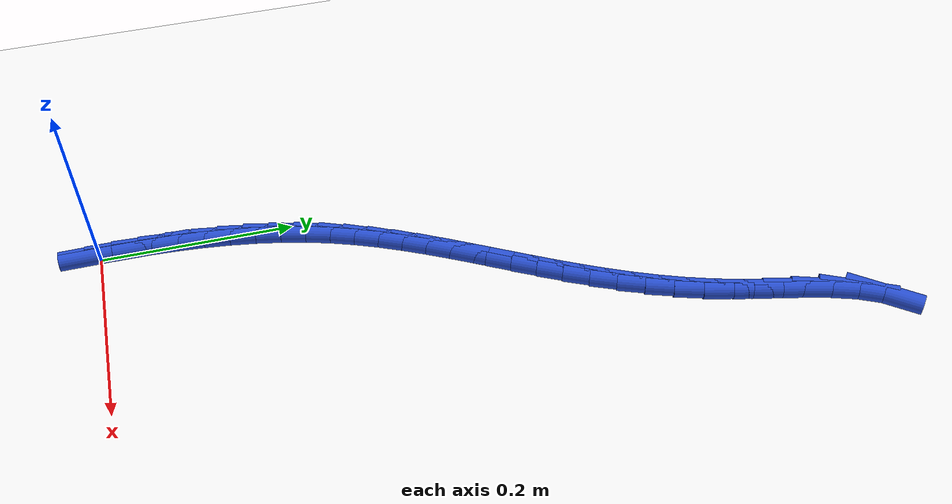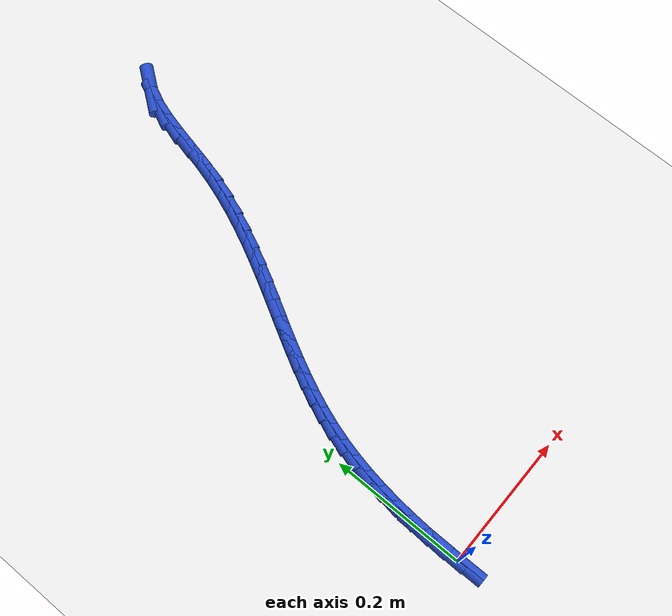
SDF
<sdf version="1.6">
 <world name="default">
  <model name="ground_plane">
   <static>1</static>
   <link name="link">
    <collision name="collision">
     <geometry><plane><normal>0 0 1</normal><size>100 100</size></plane></geometry>
     <surface><friction><ode><mu>100</mu><mu2>50</mu2></ode></friction></surface>
    </collision>
    <visual name="visual">
     <cast_shadows>0</cast_shadows>
     <geometry><plane><normal>0 0 1</normal><size>100 100</size></plane></geometry>
     <material>
      <script><uri>file://media/materials/scripts/gazebo.material</uri><name>Gazebo/WhiteGlow</name></script>
     </material>
    </visual>
   </link>
  </model>
  <model name="line">
   <link name="link_0">
    <pose>7.806255641895632e-18 2.7755575615628914e-17 0.01 0 1.57 -1.561988760627516</pose>
    <collision name="collision">
     <geometry><cylinder><radius>0.01</radius><length>0.08</length></cylinder></geometry>
    </collision>
    <visual name="visual">
     <material>
      <script><name>Gazebo/Blue</name><uri>file://media/materials/scripts/gazebo.material</uri></script>
     </material>
     <geometry><cylinder><radius>0.01</radius><length>0.08</length></cylinder></geometry>
    </visual>
   </link>
   <link name="link_1">
    <pose>-0.00023834691809172237 0.027060909951467163 0.01 0 1.57 1.5531682049827387</pose>
    <collision name="collision">
     <geometry><cylinder><radius>0.01</radius><length>0.08</length></cylinder></geometry>
    </collision>
    <visual name="visual">
     <material>
      <script><name>Gazebo/Blue</name><uri>file://media/materials/scripts/gazebo.material</uri></script>
     </material>
     <geometry><cylinder><radius>0.01</radius><length>0.08</length></cylinder></geometry>
    </visual>
   </link>
   <link name="link_2">
    <pose>0.00024055834869044307 0.05422521390538978 0.01 0 1.57 1.5242373293625207</pose>
    <collision name="collision">
     <geometry><cylinder><radius>0.01</radius><length>0.08</length></cylinder></geometry>
    </collision>
    <visual name="visual">
     <material>
      <script><name>Gazebo/Blue</name><uri>file://media/materials/scripts/gazebo.material</uri></script>
     </material>
     <geometry><cylinder><radius>0.01</radius><length>0.08</length></cylinder></geometry>
    </visual>
   </link>
   <link name="link_3">
    <pose>0.001506280793951367 0.0813909132757816 0.01 0 1.57 1.4925489831636094</pose>
    <collision name="collision">
     <geometry><cylinder><radius>0.01</radius><length>0.08</length></cylinder></geometry>
    </collision>
    <visual name="visual">
     <material>
      <script><name>Gazebo/Blue</name><uri>file://media/materials/scripts/gazebo.material</uri></script>
     </material>
     <geometry><cylinder><radius>0.01</radius><length>0.08</length></cylinder></geometry>
    </visual>
   </link>
   <link name="link_4">
    <pose>0.0036283854112959084 0.10845600947665646 0.01 0 1.57 1.4578108943396302</pose>
    <collision name="collision">
     <geometry><cylinder><radius>0.01</radius><length>0.08</length></cylinder></geometry>
    </collision>
    <visual name="visual">
     <material>
      <script><name>Gazebo/Blue</name><uri>file://media/materials/scripts/gazebo.material</uri></script>
     </material>
     <geometry><cylinder><radius>0.01</radius><length>0.08</length></cylinder></geometry>
    </visual>
   </link>
   <link name="link_5">
    <pose>0.00667643719432893 0.13531850392202796 0.01 0 1.57 1.4197020357615828</pose>
    <collision name="collision">
     <geometry><cylinder><radius>0.01</radius><length>0.08</length></cylinder></geometry>
    </collision>
    <visual name="visual">
     <material>
      <script><name>Gazebo/Blue</name><uri>file://media/materials/scripts/gazebo.material</uri></script>
     </material>
     <geometry><cylinder><radius>0.01</radius><length>0.08</length></cylinder></geometry>
    </visual>
   </link>
   <link name="link_6">
    <pose>0.010720001136655301 0.1618763980259101 0.01 0 1.57 1.3778764237838697</pose>
    <collision name="collision">
     <geometry><cylinder><radius>0.01</radius><length>0.08</length></cylinder></geometry>
    </collision>
    <visual name="visual">
     <material>
      <script><name>Gazebo/Blue</name><uri>file://media/materials/scripts/gazebo.material</uri></script>
     </material>
     <geometry><cylinder><radius>0.01</radius><length>0.08</length></cylinder></geometry>
    </visual>
   </link>
   <link name="link_7">
    <pose>0.01582864223187988 0.18802769320231646 0.01 0 1.57 1.3319708773259131</pose>
    <collision name="collision">
     <geometry><cylinder><radius>0.01</radius><length>0.08</length></cylinder></geometry>
    </collision>
    <visual name="visual">
     <material>
      <script><name>Gazebo/Blue</name><uri>file://media/materials/scripts/gazebo.material</uri></script>
     </material>
     <geometry><cylinder><radius>0.01</radius><length>0.08</length></cylinder></geometry>
    </visual>
   </link>
   <link name="link_8">
    <pose>0.022071925473607524 0.2136703908652609 0.01 0 1.57 1.281680081722242</pose>
    <collision name="collision">
     <geometry><cylinder><radius>0.01</radius><length>0.08</length></cylinder></geometry>
    </collision>
    <visual name="visual">
     <material>
      <script><name>Gazebo/Blue</name><uri>file://media/materials/scripts/gazebo.material</uri></script>
     </material>
     <geometry><cylinder><radius>0.01</radius><length>0.08</length></cylinder></geometry>
    </visual>
   </link>
   <link name="link_9">
    <pose>0.029518110613805982 0.2387037425398303 0.01 0 1.57 1.2306982300158325</pose>
    <collision name="collision">
     <geometry><cylinder><radius>0.01</radius><length>0.08</length></cylinder></geometry>
    </collision>
    <visual name="visual">
     <material>
      <script><name>Gazebo/Blue</name><uri>file://media/materials/scripts/gazebo.material</uri></script>
     </material>
     <geometry><cylinder><radius>0.01</radius><length>0.08</length></cylinder></geometry>
    </visual>
   </link>
   <link name="link_10">
    <pose>0.03815283069181574 0.2631061364913596 0.01 0 1.57 1.1856657595457363</pose>
    <collision name="collision">
     <geometry><cylinder><radius>0.01</radius><length>0.08</length></cylinder></geometry>
    </collision>
    <visual name="visual">
     <material>
      <script><name>Gazebo/Blue</name><uri>file://media/materials/scripts/gazebo.material</uri></script>
     </material>
     <geometry><cylinder><radius>0.01</radius><length>0.08</length></cylinder></geometry>
    </visual>
   </link>
   <link name="link_11">
    <pose>0.04783110428907 0.2869810585728688 0.01 0 1.57 1.1476796684752215</pose>
    <collision name="collision">
     <geometry><cylinder><radius>0.01</radius><length>0.08</length></cylinder></geometry>
    </collision>
    <visual name="visual">
     <material>
      <script><name>Gazebo/Blue</name><uri>file://media/materials/scripts/gazebo.material</uri></script>
     </material>
     <geometry><cylinder><radius>0.01</radius><length>0.08</length></cylinder></geometry>
    </visual>
   </link>
   <link name="link_12">
    <pose>0.05839641176216312 0.31044304551273 0.01 0 1.57 1.1170740314120131</pose>
    <collision name="collision">
     <geometry><cylinder><radius>0.01</radius><length>0.08</length></cylinder></geometry>
    </collision>
    <visual name="visual">
     <material>
      <script><name>Gazebo/Blue</name><uri>file://media/materials/scripts/gazebo.material</uri></script>
     </material>
     <geometry><cylinder><radius>0.01</radius><length>0.08</length></cylinder></geometry>
    </visual>
   </link>
   <link name="link_13">
    <pose>0.06969223346768945 0.3336066340393151 0.01 0 1.57 1.0940089701561573</pose>
    <collision name="collision">
     <geometry><cylinder><radius>0.01</radius><length>0.08</length></cylinder></geometry>
    </collision>
    <visual name="visual">
     <material>
      <script><name>Gazebo/Blue</name><uri>file://media/materials/scripts/gazebo.material</uri></script>
     </material>
     <geometry><cylinder><radius>0.01</radius><length>0.08</length></cylinder></geometry>
    </visual>
   </link>
   <link name="link_14">
    <pose>0.08156204976224339 0.3565863608809963 0.01 0 1.57 1.0785171506523428</pose>
    <collision name="collision">
     <geometry><cylinder><radius>0.01</radius><length>0.08</length></cylinder></geometry>
    </collision>
    <visual name="visual">
     <material>
      <script><name>Gazebo/Blue</name><uri>file://media/materials/scripts/gazebo.material</uri></script>
     </material>
     <geometry><cylinder><radius>0.01</radius><length>0.08</length></cylinder></geometry>
    </visual>
   </link>
   <link name="link_15">
    <pose>0.09384934100241932 0.37949676276614575 0.01 0 1.57 1.070543476899343</pose>
    <collision name="collision">
     <geometry><cylinder><radius>0.01</radius><length>0.08</length></cylinder></geometry>
    </collision>
    <visual name="visual">
     <material>
      <script><name>Gazebo/Blue</name><uri>file://media/materials/scripts/gazebo.material</uri></script>
     </material>
     <geometry><cylinder><radius>0.01</radius><length>0.08</length></cylinder></geometry>
    </visual>
   </link>
   <link name="link_16">
    <pose>0.10639758754481154 0.40245237642313525 0.01 0 1.57 1.069973672523629</pose>
    <collision name="collision">
     <geometry><cylinder><radius>0.01</radius><length>0.08</length></cylinder></geometry>
    </collision>
    <visual name="visual">
     <material>
      <script><name>Gazebo/Blue</name><uri>file://media/materials/scripts/gazebo.material</uri></script>
     </material>
     <geometry><cylinder><radius>0.01</radius><length>0.08</length></cylinder></geometry>
    </visual>
   </link>
   <link name="link_17">
    <pose>0.11905026974601447 0.42556773858033703 0.01 0 1.57 1.0766503916444368</pose>
    <collision name="collision">
     <geometry><cylinder><radius>0.01</radius><length>0.08</length></cylinder></geometry>
    </collision>
    <visual name="visual">
     <material>
      <script><name>Gazebo/Blue</name><uri>file://media/materials/scripts/gazebo.material</uri></script>
     </material>
     <geometry><cylinder><radius>0.01</radius><length>0.08</length></cylinder></geometry>
    </visual>
   </link>
   <link name="link_18">
    <pose>0.13165086796262246 0.448957385966123 0.01 0 1.57 1.0903773508877337</pose>
    <collision name="collision">
     <geometry><cylinder><radius>0.01</radius><length>0.08</length></cylinder></geometry>
    </collision>
    <visual name="visual">
     <material>
      <script><name>Gazebo/Blue</name><uri>file://media/materials/scripts/gazebo.material</uri></script>
     </material>
     <geometry><cylinder><radius>0.01</radius><length>0.08</length></cylinder></geometry>
    </visual>
   </link>
   <link name="link_19">
    <pose>0.14404286255122994 0.4727358553088655 0.01 0 1.57 1.1109130738114916</pose>
    <collision name="collision">
     <geometry><cylinder><radius>0.01</radius><length>0.08</length></cylinder></geometry>
    </collision>
    <visual name="visual">
     <material>
      <script><name>Gazebo/Blue</name><uri>file://media/materials/scripts/gazebo.material</uri></script>
     </material>
     <geometry><cylinder><radius>0.01</radius><length>0.08</length></cylinder></geometry>
    </visual>
   </link>
   <link name="link_20">
    <pose>0.15606973386843118 0.4970176833369363 0.01 0 1.57 1.1379566271776875</pose>
    <collision name="collision">
     <geometry><cylinder><radius>0.01</radius><length>0.08</length></cylinder></geometry>
    </collision>
    <visual name="visual">
     <material>
      <script><name>Gazebo/Blue</name><uri>file://media/materials/scripts/gazebo.material</uri></script>
     </material>
     <geometry><cylinder><radius>0.01</radius><length>0.08</length></cylinder></geometry>
    </visual>
   </link>
   <link name="link_21">
    <pose>0.16757496227082064 0.5219174067787077 0.01 0 1.57 1.1711285279142931</pose>
    <collision name="collision">
     <geometry><cylinder><radius>0.01</radius><length>0.08</length></cylinder></geometry>
    </collision>
    <visual name="visual">
     <material>
      <script><name>Gazebo/Blue</name><uri>file://media/materials/scripts/gazebo.material</uri></script>
     </material>
     <geometry><cylinder><radius>0.01</radius><length>0.08</length></cylinder></geometry>
    </visual>
   </link>
   <link name="link_22">
    <pose>0.17840202811499267 0.5475495623625517 0.01 0 1.57 1.2099509087736775</pose>
    <collision name="collision">
     <geometry><cylinder><radius>0.01</radius><length>0.08</length></cylinder></geometry>
    </collision>
    <visual name="visual">
     <material>
      <script><name>Gazebo/Blue</name><uri>file://media/materials/scripts/gazebo.material</uri></script>
     </material>
     <geometry><cylinder><radius>0.01</radius><length>0.08</length></cylinder></geometry>
    </visual>
   </link>
   <link name="link_23">
    <pose>0.18839441175754157 0.57402868681684 0.01 0 1.57 1.2538318720527826</pose>
    <collision name="collision">
     <geometry><cylinder><radius>0.01</radius><length>0.08</length></cylinder></geometry>
    </collision>
    <visual name="visual">
     <material>
      <script><name>Gazebo/Blue</name><uri>file://media/materials/scripts/gazebo.material</uri></script>
     </material>
     <geometry><cylinder><radius>0.01</radius><length>0.08</length></cylinder></geometry>
    </visual>
   </link>
   <link name="link_24">
    <pose>0.19739559355506175 0.6014693168699451 0.01 0 1.57 1.3020434981340092</pose>
    <collision name="collision">
     <geometry><cylinder><radius>0.01</radius><length>0.08</length></cylinder></geometry>
    </collision>
    <visual name="visual">
     <material>
      <script><name>Gazebo/Blue</name><uri>file://media/materials/scripts/gazebo.material</uri></script>
     </material>
     <geometry><cylinder><radius>0.01</radius><length>0.08</length></cylinder></geometry>
    </visual>
   </link>
   <link name="link_25">
    <pose>0.20524942431371052 0.6299855744997204 0.01 0 1.57 1.343783147761084</pose>
    <collision name="collision">
     <geometry><cylinder><radius>0.01</radius><length>0.08</length></cylinder></geometry>
    </collision>
    <visual name="visual">
     <material>
      <script><name>Gazebo/Blue</name><uri>file://media/materials/scripts/gazebo.material</uri></script>
     </material>
     <geometry><cylinder><radius>0.01</radius><length>0.08</length></cylinder></geometry>
    </visual>
   </link>
   <link name="link_26">
    <pose>0.21204733430612246 0.6594143949293645 0.01 0 1.57 1.353040288297044</pose>
    <collision name="collision">
     <geometry><cylinder><radius>0.01</radius><length>0.08</length></cylinder></geometry>
    </collision>
    <visual name="visual">
     <material>
      <script><name>Gazebo/Blue</name><uri>file://media/materials/scripts/gazebo.material</uri></script>
     </material>
     <geometry><cylinder><radius>0.01</radius><length>0.08</length></cylinder></geometry>
    </visual>
   </link>
   <link name="link_27">
    <pose>0.21855716005840817 0.688835417727082 0.01 0 1.57 1.3253910439511205</pose>
    <collision name="collision">
     <geometry><cylinder><radius>0.01</radius><length>0.08</length></cylinder></geometry>
    </collision>
    <visual name="visual">
     <material>
      <script><name>Gazebo/Blue</name><uri>file://media/materials/scripts/gazebo.material</uri></script>
     </material>
     <geometry><cylinder><radius>0.01</radius><length>0.08</length></cylinder></geometry>
    </visual>
   </link>
   <link name="link_28">
    <pose>0.22566119793408768 0.7172001347139273 0.01 0 1.57 1.2549781935807882</pose>
    <collision name="collision">
     <geometry><cylinder><radius>0.01</radius><length>0.08</length></cylinder></geometry>
    </collision>
    <visual name="visual">
     <material>
      <script><name>Gazebo/Blue</name><uri>file://media/materials/scripts/gazebo.material</uri></script>
     </material>
     <geometry><cylinder><radius>0.01</radius><length>0.08</length></cylinder></geometry>
    </visual>
   </link>
   <link name="link_29">
    <pose>0.2342417442966808 0.7434600377109538 0.01 0 1.57 1.1286296549307193</pose>
    <collision name="collision">
     <geometry><cylinder><radius>0.01</radius><length>0.08</length></cylinder></geometry>
    </collision>
    <visual name="visual">
     <material>
      <script><name>Gazebo/Blue</name><uri>file://media/materials/scripts/gazebo.material</uri></script>
     </material>
     <geometry><cylinder><radius>0.01</radius><length>0.08</length></cylinder></geometry>
    </visual>
   </link>
   <link name="link_30">
    <pose>0.2451810955097074 0.7665666185392155 0.01 0 1.57 0.9272312518262499</pose>
    <collision name="collision">
     <geometry><cylinder><radius>0.01</radius><length>0.08</length></cylinder></geometry>
    </collision>
    <visual name="visual">
     <material>
      <script><name>Gazebo/Blue</name><uri>file://media/materials/scripts/gazebo.material</uri></script>
     </material>
     <geometry><cylinder><radius>0.01</radius><length>0.08</length></cylinder></geometry>
    </visual>
   </link>
   <link name="link_270">
    <pose>1.3877787807814457e-17 -1.249000902703301e-16 0.01 0 1.57 -1.5617034782360681</pose>
    <collision name="collision">
     <geometry><cylinder><radius>0.01</radius><length>0.08</length></cylinder></geometry>
    </collision>
    <visual name="visual">
     <material>
      <script><name>Gazebo/Blue</name><uri>file://media/materials/scripts/gazebo.material</uri></script>
     </material>
     <geometry><cylinder><radius>0.01</radius><length>0.08</length></cylinder></geometry>
    </visual>
   </link>
   <link name="link_271">
    <pose>-0.00024628285367867594 0.02708458900432673 0.01 0 1.57 1.5553071583710847</pose>
    <collision name="collision">
     <geometry><cylinder><radius>0.01</radius><length>0.08</length></cylinder></geometry>
    </collision>
    <visual name="visual">
     <material>
      <script><name>Gazebo/Blue</name><uri>file://media/materials/scripts/gazebo.material</uri></script>
     </material>
     <geometry><cylinder><radius>0.01</radius><length>0.08</length></cylinder></geometry>
    </visual>
   </link>
   <link name="link_272">
    <pose>0.00017707086399479117 0.05441464632826463 0.01 0 1.57 1.5675422352784614</pose>
    <collision name="collision">
     <geometry><cylinder><radius>0.01</radius><length>0.08</length></cylinder></geometry>
    </collision>
    <visual name="visual">
     <material>
      <script><name>Gazebo/Blue</name><uri>file://media/materials/scripts/gazebo.material</uri></script>
     </material>
     <geometry><cylinder><radius>0.01</radius><length>0.08</length></cylinder></geometry>
    </visual>
   </link>
  </model>
 </world>
</sdf>
